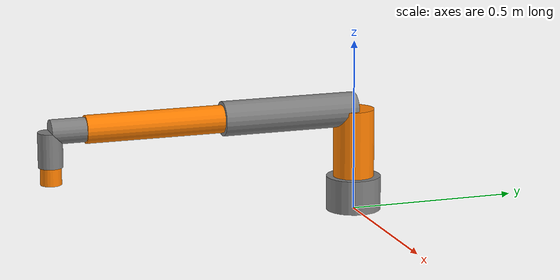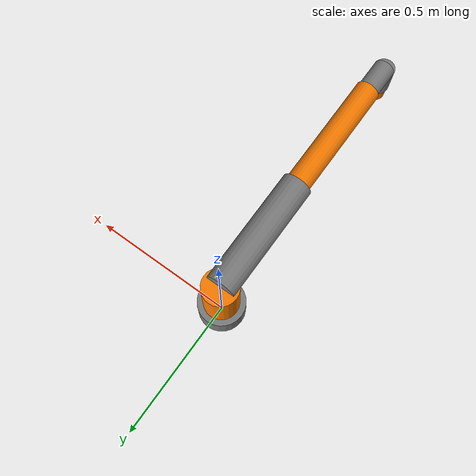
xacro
<?xml version="1.0"?>
<robot xmlns:xacro="http://www.ros.org/wiki/xacro" name="my_robot">

  <!-- Include ROS2 control -->
  <xacro:include filename="$(find my_robot_description)/urdf/control/ros2_control.urdf.xacro"/>

  <!-- Materials -->
  <material name="grey">
    <color rgba="0.5 0.5 0.5 1"/>
  </material>
  <material name="orange">
    <color rgba="1.0 0.5 0.0 1"/>
  </material>
  <material name="black">
    <color rgba="0.0 0.0 0.0 1"/>
  </material>

  <!-- Base Link -->
  <link name="base_link">
    <visual>
      <origin xyz="0 0 0.05" rpy="0 0 0"/>
      <geometry>
        <cylinder radius="0.08" length="0.1"/>
      </geometry>
      <material name="grey"/>
    </visual>
    <collision>
      <origin xyz="0 0 0.05" rpy="0 0 0"/>
      <geometry>
        <cylinder radius="0.08" length="0.1"/>
      </geometry>
    </collision>
    <inertial>
      <origin xyz="0 0 0.05" rpy="0 0 0"/>
      <mass value="2.0"/>
      <inertia ixx="0.01" ixy="0" ixz="0" iyy="0.01" iyz="0" izz="0.01"/>
    </inertial>
  </link>

  <!-- Shoulder Link -->
  <link name="shoulder_link">
    <visual>
      <origin xyz="0 0 0.1" rpy="0 0 0"/>
      <geometry>
        <cylinder radius="0.06" length="0.2"/>
      </geometry>
      <material name="orange"/>
    </visual>
    <collision>
      <origin xyz="0 0 0.1" rpy="0 0 0"/>
      <geometry>
        <cylinder radius="0.06" length="0.2"/>
      </geometry>
    </collision>
    <inertial>
      <origin xyz="0 0 0.1" rpy="0 0 0"/>
      <mass value="1.5"/>
      <inertia ixx="0.01" ixy="0" ixz="0" iyy="0.01" iyz="0" izz="0.005"/>
    </inertial>
  </link>

  <!-- Shoulder Joint -->
  <joint name="shoulder_pan_joint" type="revolute">
    <parent link="base_link"/>
    <child link="shoulder_link"/>
    <origin xyz="0 0 0.1" rpy="0 0 0"/>
    <axis xyz="0 0 1"/>
    <limit lower="-3.14159" upper="3.14159" effort="100" velocity="3.14"/>
  </joint>

  <!-- Upper Arm Link -->
  <link name="upper_arm_link">
    <visual>
      <origin xyz="0 0 0.2" rpy="0 0 0"/>
      <geometry>
        <cylinder radius="0.05" length="0.4"/>
      </geometry>
      <material name="grey"/>
    </visual>
    <collision>
      <origin xyz="0 0 0.2" rpy="0 0 0"/>
      <geometry>
        <cylinder radius="0.05" length="0.4"/>
      </geometry>
    </collision>
    <inertial>
      <origin xyz="0 0 0.2" rpy="0 0 0"/>
      <mass value="1.2"/>
      <inertia ixx="0.02" ixy="0" ixz="0" iyy="0.02" iyz="0" izz="0.002"/>
    </inertial>
  </link>

  <!-- Shoulder Lift Joint -->
  <joint name="shoulder_lift_joint" type="revolute">
    <parent link="shoulder_link"/>
    <child link="upper_arm_link"/>
    <origin xyz="0 0 0.2" rpy="1.5708 0 0"/>
    <axis xyz="0 1 0"/>
    <limit lower="-3.14159" upper="3.14159" effort="100" velocity="3.14"/>
  </joint>

  <!-- Forearm Link -->
  <link name="forearm_link">
    <visual>
      <origin xyz="0 0 0.2" rpy="0 0 0"/>
      <geometry>
        <cylinder radius="0.04" length="0.4"/>
      </geometry>
      <material name="orange"/>
    </visual>
    <collision>
      <origin xyz="0 0 0.2" rpy="0 0 0"/>
      <geometry>
        <cylinder radius="0.04" length="0.4"/>
      </geometry>
    </collision>
    <inertial>
      <origin xyz="0 0 0.2" rpy="0 0 0"/>
      <mass value="1.0"/>
      <inertia ixx="0.015" ixy="0" ixz="0" iyy="0.015" iyz="0" izz="0.0015"/>
    </inertial>
  </link>

  <!-- Elbow Joint -->
  <joint name="elbow_joint" type="revolute">
    <parent link="upper_arm_link"/>
    <child link="forearm_link"/>
    <origin xyz="0 0 0.4" rpy="0 0 0"/>
    <axis xyz="0 1 0"/>
    <limit lower="-3.14159" upper="3.14159" effort="100" velocity="3.14"/>
  </joint>

  <!-- Wrist 1 Link -->
  <link name="wrist_1_link">
    <visual>
      <origin xyz="0 0 0.05" rpy="0 0 0"/>
      <geometry>
        <cylinder radius="0.035" length="0.1"/>
      </geometry>
      <material name="grey"/>
    </visual>
    <collision>
      <origin xyz="0 0 0.05" rpy="0 0 0"/>
      <geometry>
        <cylinder radius="0.035" length="0.1"/>
      </geometry>
    </collision>
    <inertial>
      <origin xyz="0 0 0.05" rpy="0 0 0"/>
      <mass value="0.5"/>
      <inertia ixx="0.002" ixy="0" ixz="0" iyy="0.002" iyz="0" izz="0.0005"/>
    </inertial>
  </link>

  <!-- Wrist 1 Joint -->
  <joint name="wrist_1_joint" type="revolute">
    <parent link="forearm_link"/>
    <child link="wrist_1_link"/>
    <origin xyz="0 0 0.4" rpy="0 0 0"/>
    <axis xyz="0 1 0"/>
    <limit lower="-3.14159" upper="3.14159" effort="50" velocity="6.28"/>
  </joint>

  <!-- Wrist 2 Link -->
  <link name="wrist_2_link">
    <visual>
      <origin xyz="0 0 0.05" rpy="0 0 0"/>
      <geometry>
        <cylinder radius="0.035" length="0.1"/>
      </geometry>
      <material name="grey"/>
    </visual>
    <collision>
      <origin xyz="0 0 0.05" rpy="0 0 0"/>
      <geometry>
        <cylinder radius="0.035" length="0.1"/>
      </geometry>
    </collision>
    <inertial>
      <origin xyz="0 0 0.05" rpy="0 0 0"/>
      <mass value="0.5"/>
      <inertia ixx="0.002" ixy="0" ixz="0" iyy="0.002" iyz="0" izz="0.0005"/>
    </inertial>
  </link>

  <!-- Wrist 2 Joint -->
  <joint name="wrist_2_joint" type="revolute">
    <parent link="wrist_1_link"/>
    <child link="wrist_2_link"/>
    <origin xyz="0 0 0.1" rpy="1.5708 0 0"/>
    <axis xyz="0 0 1"/>
    <limit lower="-3.14159" upper="3.14159" effort="50" velocity="6.28"/>
  </joint>

  <!-- Wrist 3 Link -->
  <link name="wrist_3_link">
    <visual>
      <origin xyz="0 0 0.025" rpy="0 0 0"/>
      <geometry>
        <cylinder radius="0.03" length="0.05"/>
      </geometry>
      <material name="orange"/>
    </visual>
    <collision>
      <origin xyz="0 0 0.025" rpy="0 0 0"/>
      <geometry>
        <cylinder radius="0.03" length="0.05"/>
      </geometry>
    </collision>
    <inertial>
      <origin xyz="0 0 0.025" rpy="0 0 0"/>
      <mass value="0.3"/>
      <inertia ixx="0.001" ixy="0" ixz="0" iyy="0.001" iyz="0" izz="0.0002"/>
    </inertial>
  </link>

  <!-- Wrist 3 Joint -->
  <joint name="wrist_3_joint" type="revolute">
    <parent link="wrist_2_link"/>
    <child link="wrist_3_link"/>
    <origin xyz="0 0 0.1" rpy="0 0 0"/>
    <axis xyz="0 1 0"/>
    <limit lower="-3.14159" upper="3.14159" effort="50" velocity="6.28"/>
  </joint>

  <!-- Tool0 Frame (UR standard) -->
  <link name="tool0"/>
  <joint name="tool0_joint" type="fixed">
    <parent link="wrist_3_link"/>
    <child link="tool0"/>
    <origin xyz="0 0 0.05" rpy="3.14159 0 0"/>
  </joint>

  <!-- Flange Frame -->
  <link name="flange"/>
  <joint name="flange_joint" type="fixed">
    <parent link="wrist_3_link"/>
    <child link="flange"/>
    <origin xyz="0 0 0.025" rpy="0 0 0"/>
  </joint>

  <!-- ROS2 Control -->
  <xacro:ros2_control name="arm" plugin="gz_ros2_control/GazeboSimSystem"/>

</robot>
